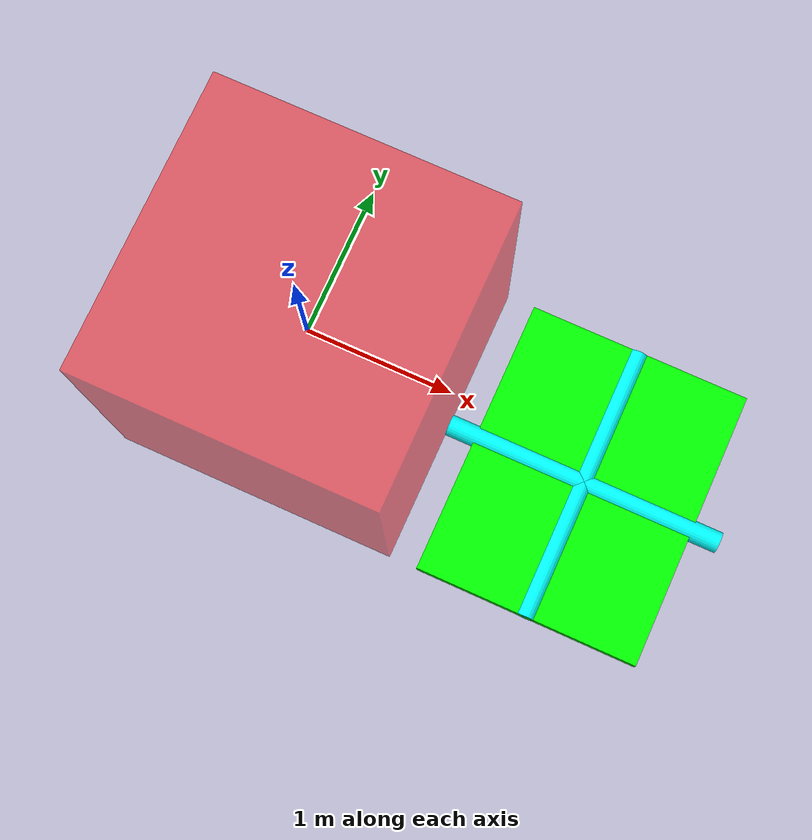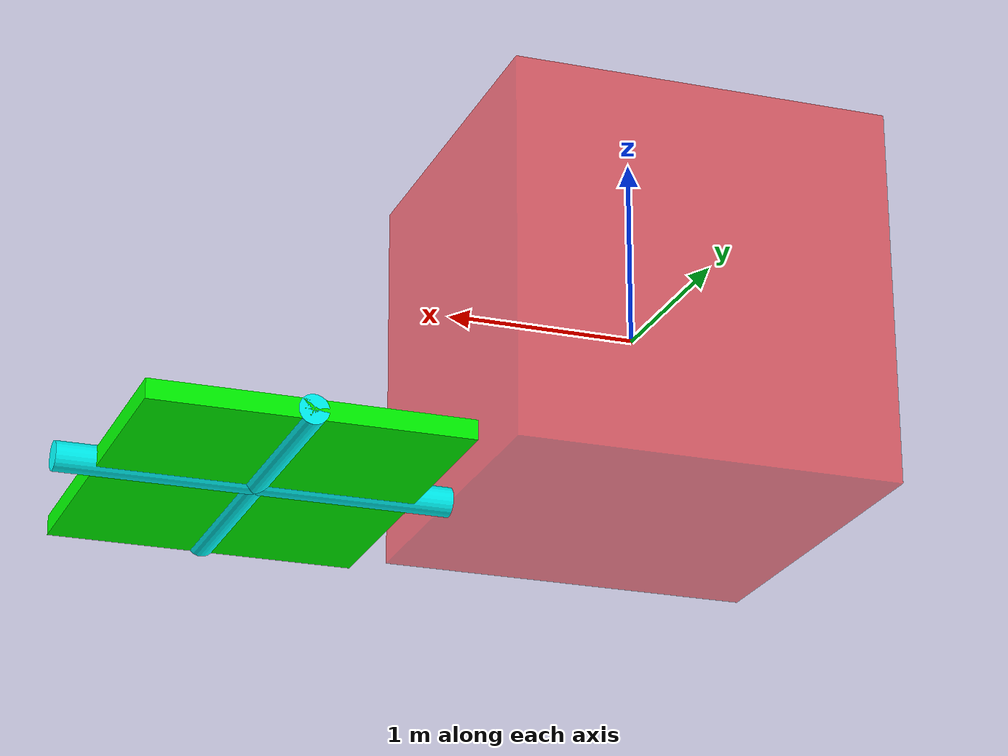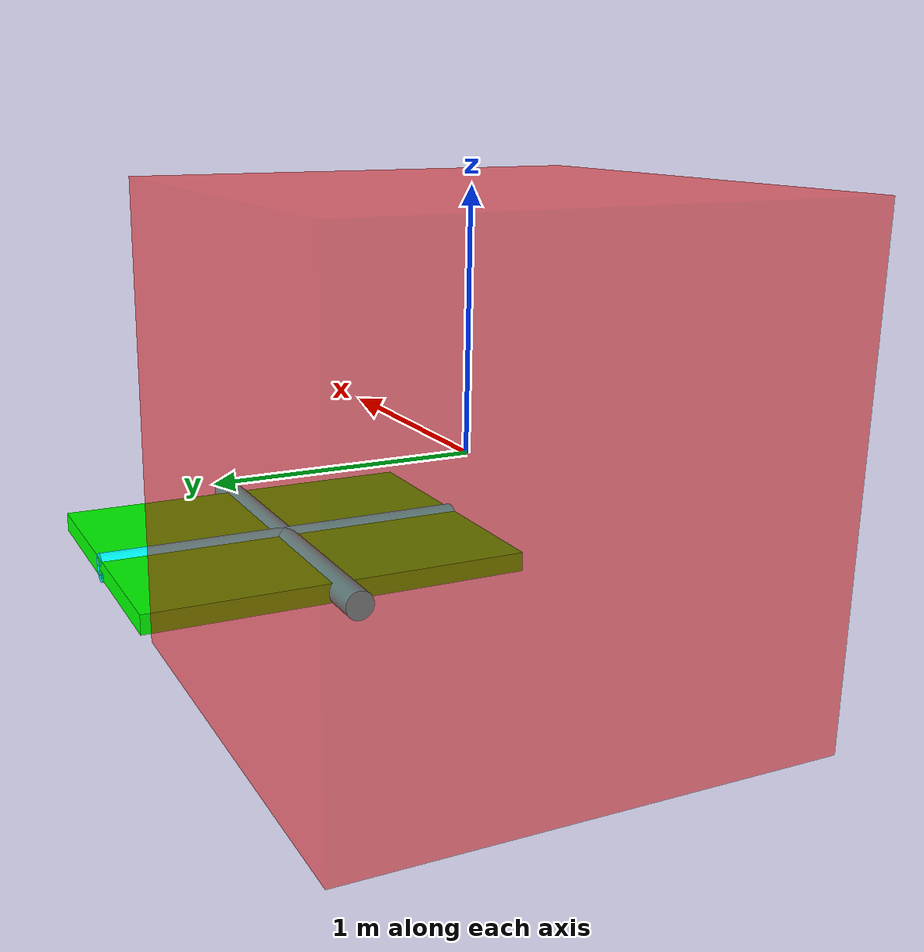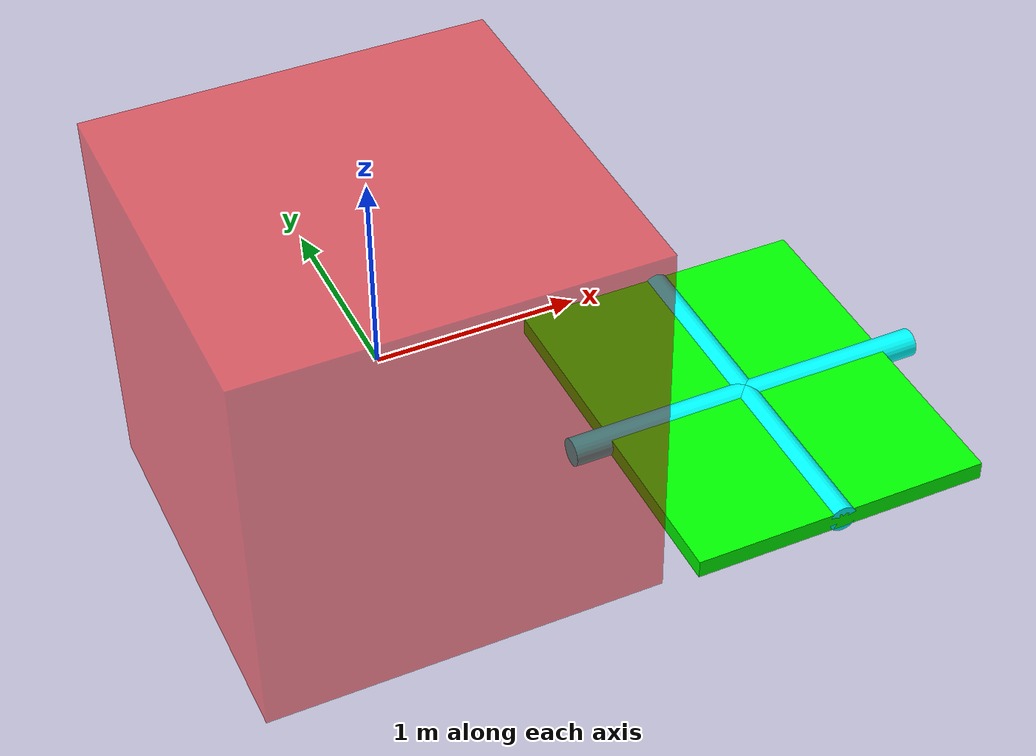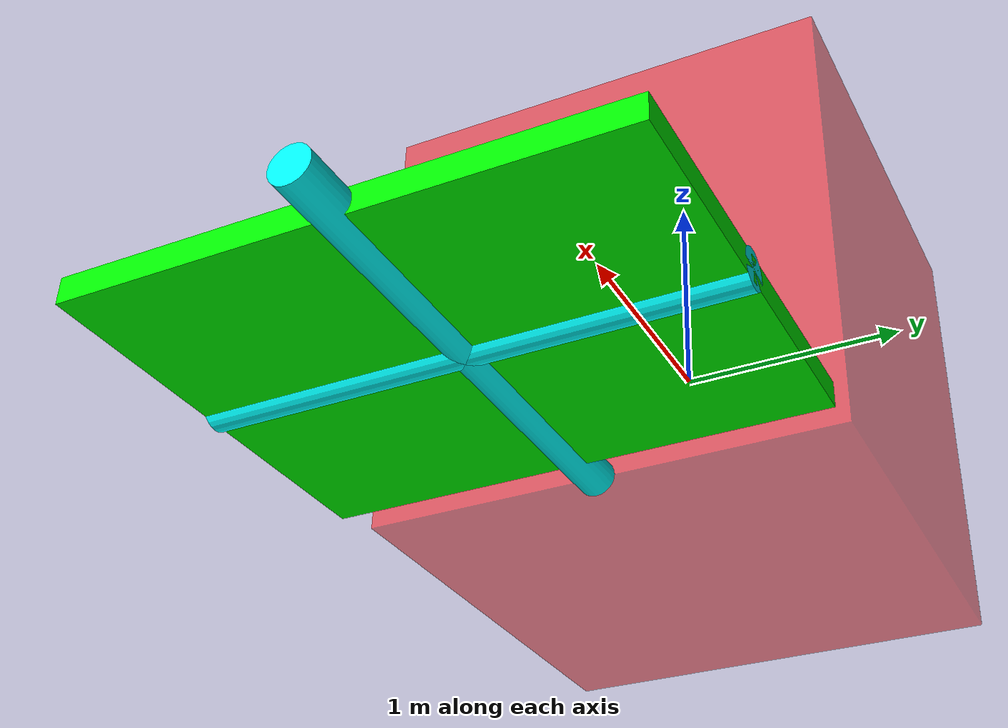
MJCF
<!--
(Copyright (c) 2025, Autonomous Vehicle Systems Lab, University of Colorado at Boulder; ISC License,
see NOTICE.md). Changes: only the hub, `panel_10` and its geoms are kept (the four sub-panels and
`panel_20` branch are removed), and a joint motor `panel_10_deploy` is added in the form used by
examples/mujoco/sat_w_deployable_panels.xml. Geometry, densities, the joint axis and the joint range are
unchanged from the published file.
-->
<mujoco>
	<option gravity="0 0 0">
		<flag contact="disable"/>
	</option>

	<worldbody>
		<body name="hub">
			<freejoint/>
			<geom name="hub_box" type="box" size="1 1 1" density="700" rgba="1 0 0 0.5"/>

			<body name="panel_10" pos="1 0 -1" xyaxes="0 -1 0 0 0 -1">
				<joint name="panel_10_deploy" axis="1 0 0" range="0 90"/>
				<geom name="panel_10_box" type="box"  pos="0 0 1" size="1 0.05 0.8" density="500" rgba="0 1 0 1"/>
				<geom name="panel_10_bar" type="cylinder" fromto="0 0 0 0 0 2" size=".075" density="1000" rgba="0 1 1 1"/>
				<geom name="panel_10_cbar" type="cylinder" fromto="1 0 1 -1 0 1" size=".075" density="1000" rgba="0 1 1 1" />
			</body>
		</body>
	</worldbody>

	<actuator>
		<motor name="panel_10_deploy" joint="panel_10_deploy" />
	</actuator>
</mujoco>
